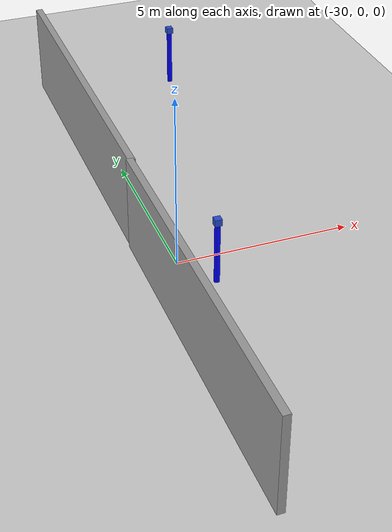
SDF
<sdf version="1.7">
 <world name="simulate_indoor">
  <model name="ground_plane">
   <static>1</static>
   <link name="link">
    <collision name="collision">
     <geometry><plane><normal>0 0 1</normal><size>100 100</size></plane></geometry>
     <surface>
      <contact><collide_bitmask>65535</collide_bitmask></contact>
      <friction><ode><mu>100</mu><mu2>50</mu2></ode></friction>
     </surface>
    </collision>
    <visual name="visual">
     <cast_shadows>0</cast_shadows>
     <geometry><plane><normal>0 0 1</normal><size>100 100</size></plane></geometry>
     <material>
      <script><uri>file://media/materials/scripts/gazebo.material</uri><name>Gazebo/Grey</name></script>
     </material>
    </visual>
   </link>
  </model>
  <model name="grey_wall_short_2_0_clone_0">
   <static>1</static>
   <link name="link">
    <pose>0 0 1.4 0 -0 0</pose>
    <collision name="collision"><geometry><box><size>10 0.2 2.8</size></box></geometry></collision>
    <visual name="visual">
     <cast_shadows>0</cast_shadows>
     <geometry><box><size>10 0.2 2.8</size></box></geometry>
     <material>
      <script>
       <uri>model://grey_wall_short_2/materials/scripts</uri>
       <uri>model://grey_wall_short_2/materials/textures</uri>
       <name>vrc/grey_wall_short_2</name>
      </script>
     </material>
    </visual>
   </link>
   <pose>-30.8402 6.09677 0 0 0 -1.56771</pose>
  </model>
  <model name="grey_wall_short_2_0_clone_0_clone">
   <static>1</static>
   <link name="link">
    <pose>0 0 1.4 0 -0 0</pose>
    <collision name="collision"><geometry><box><size>10 0.2 2.8</size></box></geometry></collision>
    <visual name="visual">
     <cast_shadows>0</cast_shadows>
     <geometry><box><size>10 0.2 2.8</size></box></geometry>
     <material>
      <script>
       <uri>model://grey_wall_short_2/materials/scripts</uri>
       <uri>model://grey_wall_short_2/materials/textures</uri>
       <name>vrc/grey_wall_short_2</name>
      </script>
     </material>
    </visual>
   </link>
   <pose>-30.8481 -3.81274 0 0 0 -1.56771</pose>
  </model>
  <model name="UWB_0">
   <link name="link_1">
    <inertial>
     <mass>1</mass>
     <inertia><ixx>0.145833</ixx><ixy>0</ixy><ixz>0</ixz><iyy>0.145833</iyy><iyz>0</iyz><izz>0.125</izz></inertia>
    </inertial>
    <pose>0 0 0.95 0 -0 0</pose>
    <visual name="visual">
     <geometry><cylinder><radius>0.08</radius><length>1.9</length></cylinder></geometry>
     <material>
      <lighting>1</lighting>
      <script><uri>file://media/materials/scripts/gazebo.material</uri><name>Gazebo/Grey</name></script>
      <shader type="pixel"><normal_map>__default__</normal_map></shader>
      <ambient>0 0 1 1</ambient>
      <diffuse>0 0 1 1</diffuse>
      <specular>0 0 1 1</specular>
      <emissive>0 0 1 1</emissive>
     </material>
    </visual>
    <collision name="collision">
     <geometry><cylinder><radius>0.08</radius><length>1.9</length></cylinder></geometry>
     <surface>
      <friction>
       <ode><mu>1</mu><mu2>1</mu2><fdir1>0 0 0</fdir1><slip1>0</slip1><slip2>0</slip2></ode>
       <torsional>
        <coefficient>1</coefficient>
        <patch_radius>0</patch_radius>
        <surface_radius>0</surface_radius>
        <use_patch_radius>1</use_patch_radius>
        <ode><slip>0</slip></ode>
       </torsional>
      </friction>
      <bounce><restitution_coefficient>0</restitution_coefficient><threshold>1e+06</threshold></bounce>
      <contact>
       <collide_without_contact>0</collide_without_contact>
       <collide_without_contact_bitmask>1</collide_without_contact_bitmask>
       <collide_bitmask>1</collide_bitmask>
       <ode>
        <soft_cfm>0</soft_cfm>
        <soft_erp>0.2</soft_erp>
        <kp>1e+13</kp>
        <kd>1</kd>
        <max_vel>0.01</max_vel>
        <min_depth>0</min_depth>
       </ode>
       <bullet>
        <split_impulse>1</split_impulse>
        <split_impulse_penetration_threshold>-0.01</split_impulse_penetration_threshold>
        <soft_cfm>0</soft_cfm>
        <soft_erp>0.2</soft_erp>
        <kp>1e+13</kp>
        <kd>1</kd>
       </bullet>
      </contact>
     </surface>
    </collision>
   </link>
   <link name="link_2">
    <inertial>
     <mass>1</mass>
     <inertia>
      <ixx>0.166667</ixx>
      <ixy>0</ixy>
      <ixz>0</ixz>
      <iyy>0.166667</iyy>
      <iyz>0</iyz>
      <izz>0.166667</izz>
     </inertia>
    </inertial>
    <pose>0 0 1.9 0 -0 0</pose>
    <visual name="visual">
     <geometry><box><size>0.2 0.2 0.2</size></box></geometry>
     <material>
      <lighting>1</lighting>
      <script><uri>file://media/materials/scripts/gazebo.material</uri><name>Gazebo/Blue</name></script>
      <shader type="pixel"><normal_map>__default__</normal_map></shader>
      <ambient>1 0 0 1</ambient>
      <diffuse>1 0 0 1</diffuse>
      <specular>1 0 0 1</specular>
      <emissive>1 0 0 1</emissive>
     </material>
    </visual>
    <collision name="collision">
     <geometry><box><size>0.2 0.2 0.2</size></box></geometry>
     <surface>
      <friction>
       <ode><mu>1</mu><mu2>1</mu2><fdir1>0 0 0</fdir1><slip1>0</slip1><slip2>0</slip2></ode>
       <torsional>
        <coefficient>1</coefficient>
        <patch_radius>0</patch_radius>
        <surface_radius>0</surface_radius>
        <use_patch_radius>1</use_patch_radius>
        <ode><slip>0</slip></ode>
       </torsional>
      </friction>
      <bounce><restitution_coefficient>0</restitution_coefficient><threshold>1e+06</threshold></bounce>
      <contact>
       <collide_without_contact>0</collide_without_contact>
       <collide_without_contact_bitmask>1</collide_without_contact_bitmask>
       <collide_bitmask>1</collide_bitmask>
       <ode>
        <soft_cfm>0</soft_cfm>
        <soft_erp>0.2</soft_erp>
        <kp>1e+13</kp>
        <kd>1</kd>
        <max_vel>0.01</max_vel>
        <min_depth>0</min_depth>
       </ode>
       <bullet>
        <split_impulse>1</split_impulse>
        <split_impulse_penetration_threshold>-0.01</split_impulse_penetration_threshold>
        <soft_cfm>0</soft_cfm>
        <soft_erp>0.2</soft_erp>
        <kp>1e+13</kp>
        <kd>1</kd>
       </bullet>
      </contact>
     </surface>
    </collision>
   </link>
   <static>1</static>
   <pose>-29.2668 -1.07975 0 0 -0 0</pose>
  </model>
  <model name="UWB_4">
   <link name="link_1">
    <inertial>
     <mass>1</mass>
     <inertia><ixx>0.145833</ixx><ixy>0</ixy><ixz>0</ixz><iyy>0.145833</iyy><iyz>0</iyz><izz>0.125</izz></inertia>
    </inertial>
    <pose>0 0 0.95 0 -0 0</pose>
    <visual name="visual">
     <geometry><cylinder><radius>0.08</radius><length>1.9</length></cylinder></geometry>
     <material>
      <lighting>1</lighting>
      <script><uri>file://media/materials/scripts/gazebo.material</uri><name>Gazebo/Grey</name></script>
      <shader type="pixel"><normal_map>__default__</normal_map></shader>
      <ambient>0 0 1 1</ambient>
      <diffuse>0 0 1 1</diffuse>
      <specular>0 0 1 1</specular>
      <emissive>0 0 1 1</emissive>
     </material>
    </visual>
    <collision name="collision">
     <geometry><cylinder><radius>0.08</radius><length>1.9</length></cylinder></geometry>
     <surface>
      <friction>
       <ode><mu>1</mu><mu2>1</mu2><fdir1>0 0 0</fdir1><slip1>0</slip1><slip2>0</slip2></ode>
       <torsional>
        <coefficient>1</coefficient>
        <patch_radius>0</patch_radius>
        <surface_radius>0</surface_radius>
        <use_patch_radius>1</use_patch_radius>
        <ode><slip>0</slip></ode>
       </torsional>
      </friction>
      <bounce><restitution_coefficient>0</restitution_coefficient><threshold>1e+06</threshold></bounce>
      <contact>
       <collide_without_contact>0</collide_without_contact>
       <collide_without_contact_bitmask>1</collide_without_contact_bitmask>
       <collide_bitmask>1</collide_bitmask>
       <ode>
        <soft_cfm>0</soft_cfm>
        <soft_erp>0.2</soft_erp>
        <kp>1e+13</kp>
        <kd>1</kd>
        <max_vel>0.01</max_vel>
        <min_depth>0</min_depth>
       </ode>
       <bullet>
        <split_impulse>1</split_impulse>
        <split_impulse_penetration_threshold>-0.01</split_impulse_penetration_threshold>
        <soft_cfm>0</soft_cfm>
        <soft_erp>0.2</soft_erp>
        <kp>1e+13</kp>
        <kd>1</kd>
       </bullet>
      </contact>
     </surface>
    </collision>
   </link>
   <link name="link_2">
    <inertial>
     <mass>1</mass>
     <inertia>
      <ixx>0.166667</ixx>
      <ixy>0</ixy>
      <ixz>0</ixz>
      <iyy>0.166667</iyy>
      <iyz>0</iyz>
      <izz>0.166667</izz>
     </inertia>
    </inertial>
    <pose>0 0 1.9 0 -0 0</pose>
    <visual name="visual">
     <geometry><box><size>0.2 0.2 0.2</size></box></geometry>
     <material>
      <lighting>1</lighting>
      <script><uri>file://media/materials/scripts/gazebo.material</uri><name>Gazebo/Blue</name></script>
      <shader type="pixel"><normal_map>__default__</normal_map></shader>
      <ambient>1 0 0 1</ambient>
      <diffuse>1 0 0 1</diffuse>
      <specular>1 0 0 1</specular>
      <emissive>1 0 0 1</emissive>
     </material>
    </visual>
    <collision name="collision">
     <geometry><box><size>0.2 0.2 0.2</size></box></geometry>
     <surface>
      <friction>
       <ode><mu>1</mu><mu2>1</mu2><fdir1>0 0 0</fdir1><slip1>0</slip1><slip2>0</slip2></ode>
       <torsional>
        <coefficient>1</coefficient>
        <patch_radius>0</patch_radius>
        <surface_radius>0</surface_radius>
        <use_patch_radius>1</use_patch_radius>
        <ode><slip>0</slip></ode>
       </torsional>
      </friction>
      <bounce><restitution_coefficient>0</restitution_coefficient><threshold>1e+06</threshold></bounce>
      <contact>
       <collide_without_contact>0</collide_without_contact>
       <collide_without_contact_bitmask>1</collide_without_contact_bitmask>
       <collide_bitmask>1</collide_bitmask>
       <ode>
        <soft_cfm>0</soft_cfm>
        <soft_erp>0.2</soft_erp>
        <kp>1e+13</kp>
        <kd>1</kd>
        <max_vel>0.01</max_vel>
        <min_depth>0</min_depth>
       </ode>
       <bullet>
        <split_impulse>1</split_impulse>
        <split_impulse_penetration_threshold>-0.01</split_impulse_penetration_threshold>
        <soft_cfm>0</soft_cfm>
        <soft_erp>0.2</soft_erp>
        <kp>1e+13</kp>
        <kd>1</kd>
       </bullet>
      </contact>
     </surface>
    </collision>
   </link>
   <static>1</static>
   <pose>-26.7433 9.97108 0 0 -0 0</pose>
  </model>
 </world>
</sdf>
